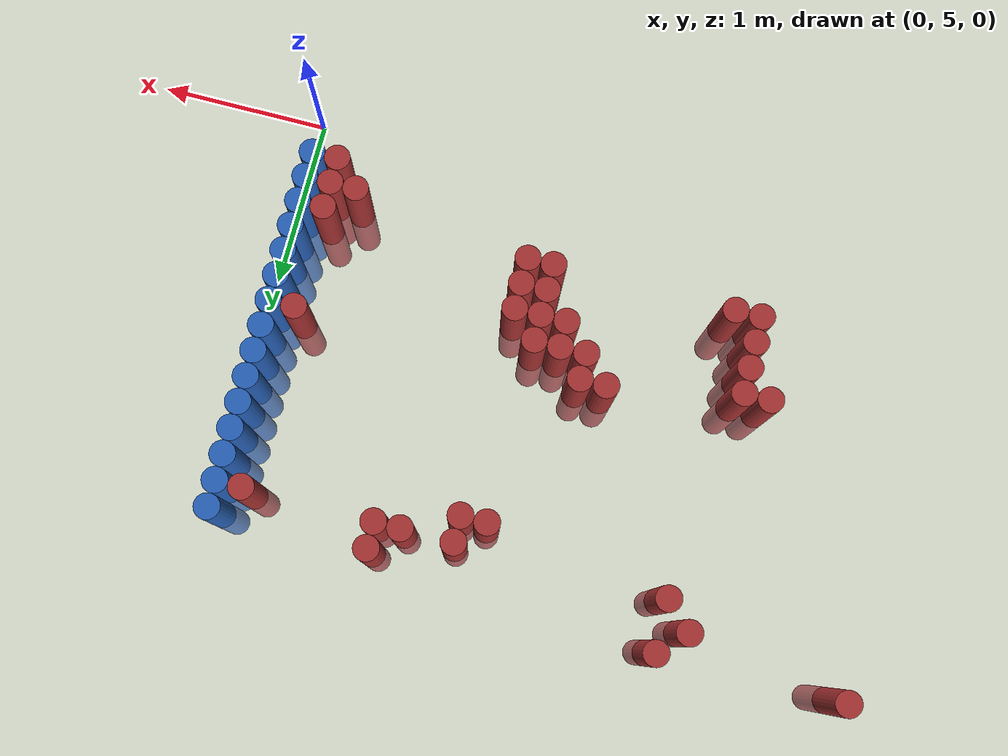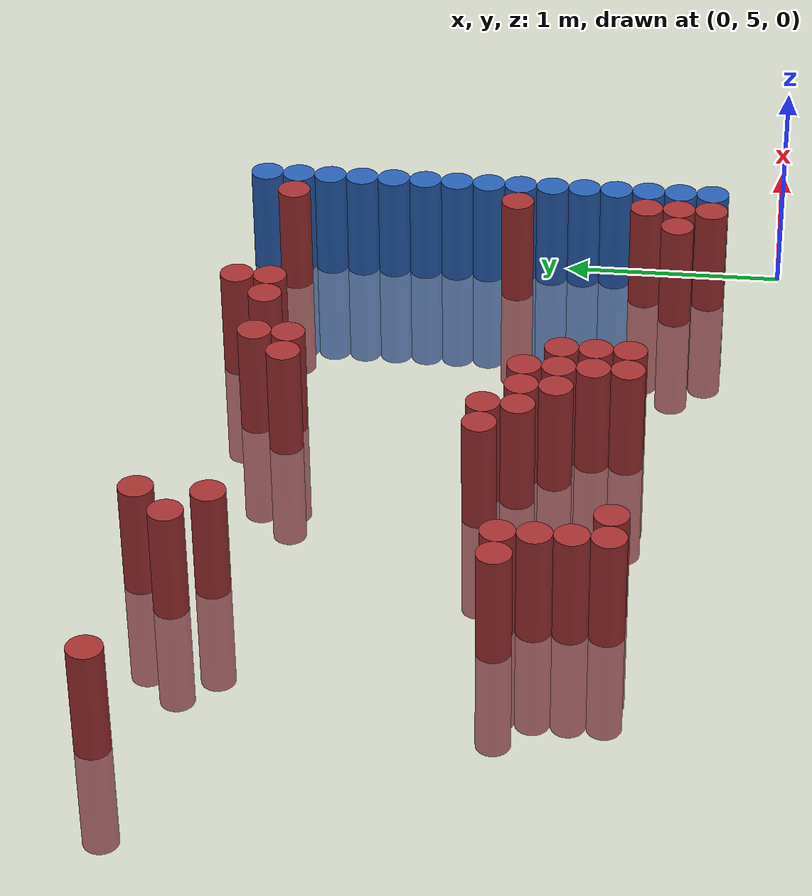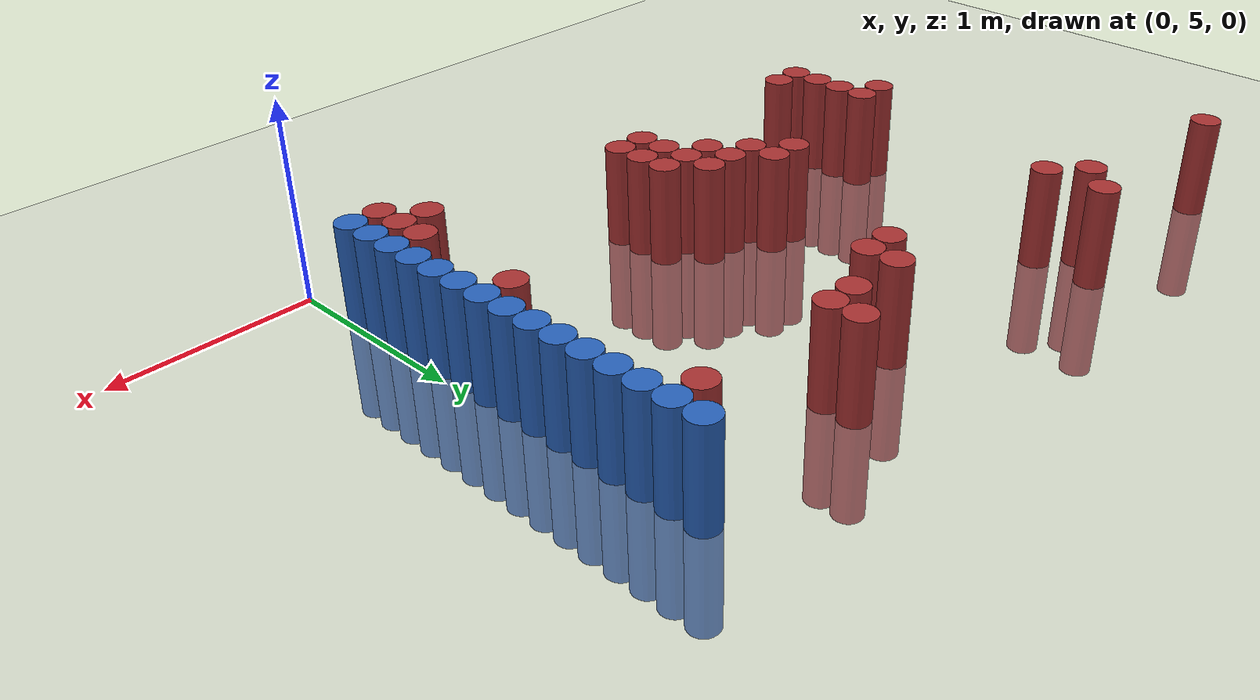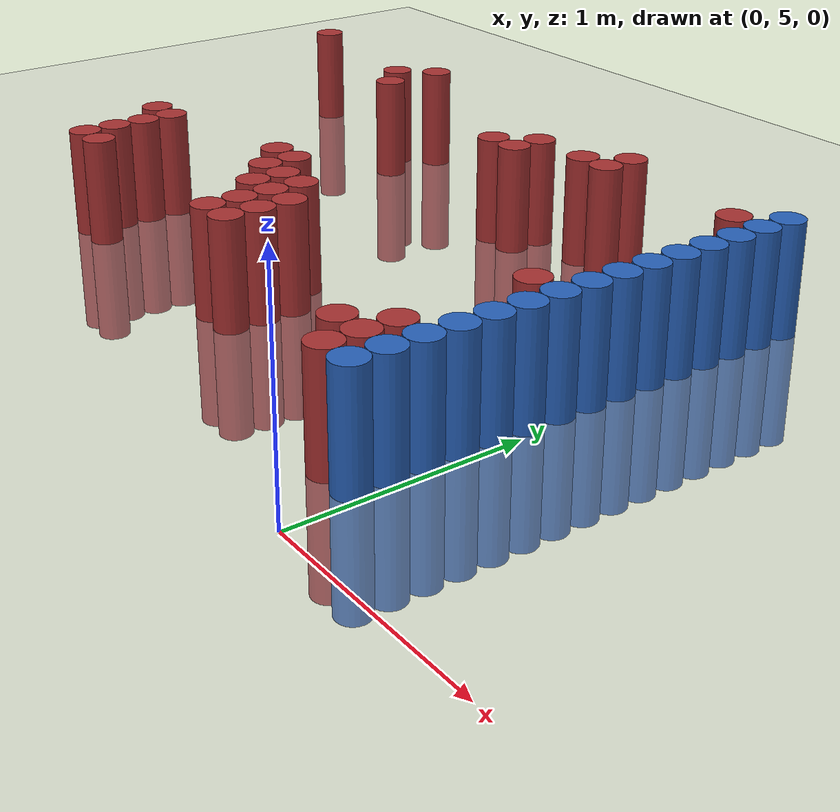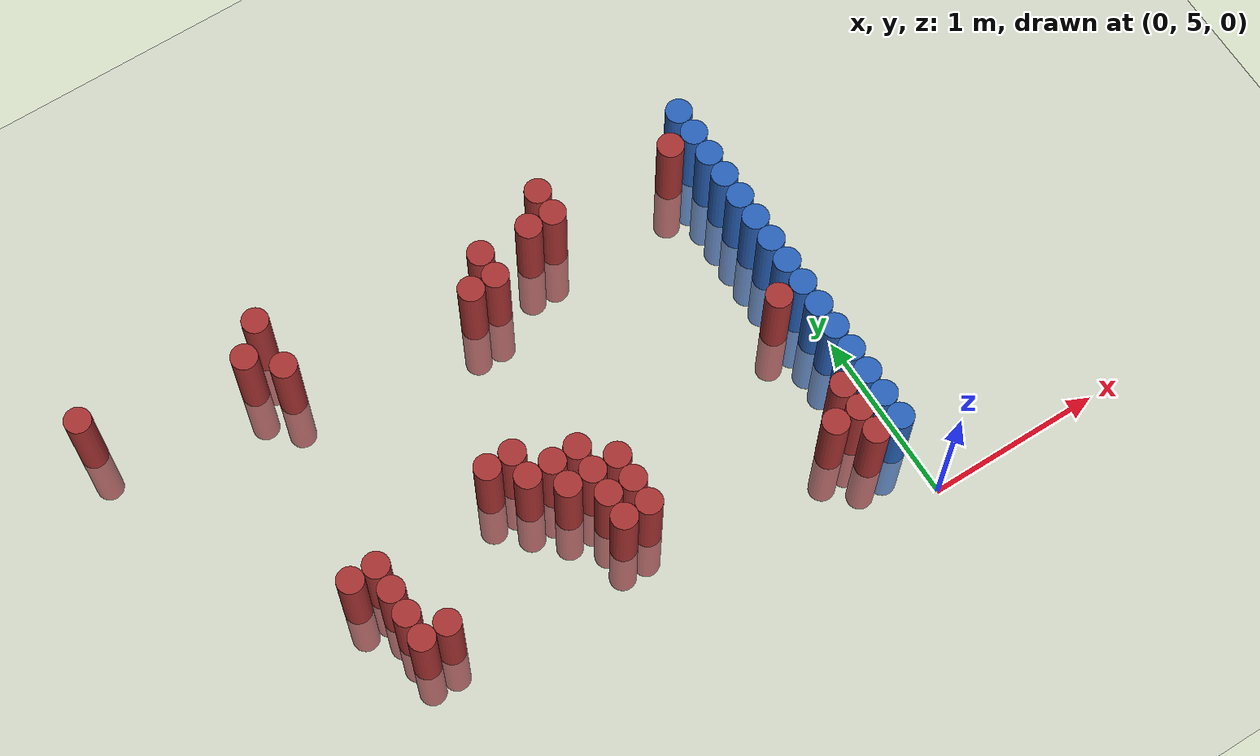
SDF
<sdf version="1.6">
 <world name="default">
  <model name="ground_plane">
   <static>1</static>
   <link name="link">
    <collision name="collision">
     <geometry><plane><normal>0 0 1</normal><size>100 100</size></plane></geometry>
     <surface><friction><ode><mu>100</mu><mu2>50</mu2></ode></friction></surface>
    </collision>
    <visual name="visual">
     <cast_shadows>0</cast_shadows>
     <geometry><plane><normal>0 0 1</normal><size>100 100</size></plane></geometry>
     <material>
      <script><uri>file://media/materials/scripts/gazebo.material</uri><name>Gazebo/Grey</name></script>
     </material>
    </visual>
   </link>
  </model>
  <model name="unit_cylinder_147">
   <static>1</static>
   <pose>-3.675000 7.575000 0.000000 0.000000 0.000000 0.000000</pose>
   <link name="link">
    <inertial>
     <mass>1</mass>
     <inertia><ixx>0.145833</ixx><ixy>0</ixy><ixz>0</ixz><iyy>0.145833</iyy><iyz>0</iyz><izz>0.125</izz></inertia>
    </inertial>
    <collision name="collision">
     <geometry><cylinder><radius>0.075000</radius><length>1</length></cylinder></geometry>
    </collision>
    <visual name="visual">
     <geometry><cylinder><radius>0.075000</radius><length>1</length></cylinder></geometry>
     <material>
      <ambient>0.648000 0.192000 0.192000 1</ambient>
      <diffuse>0.648000 0.192000 0.192000 1</diffuse>
     </material>
     <material>
      <script><name>Gazebo/Grey</name><uri>file://media/materials/scripts/gazebo.material</uri></script>
     </material>
    </visual>
   </link>
  </model>
  <model name="unit_cylinder_158">
   <static>1</static>
   <pose>-2.925000 6.075000 0.000000 0.000000 0.000000 0.000000</pose>
   <link name="link">
    <inertial>
     <mass>1</mass>
     <inertia><ixx>0.145833</ixx><ixy>0</ixy><ixz>0</ixz><iyy>0.145833</iyy><iyz>0</iyz><izz>0.125</izz></inertia>
    </inertial>
    <collision name="collision">
     <geometry><cylinder><radius>0.075000</radius><length>1</length></cylinder></geometry>
    </collision>
    <visual name="visual">
     <geometry><cylinder><radius>0.075000</radius><length>1</length></cylinder></geometry>
     <material>
      <ambient>0.648000 0.192000 0.192000 1</ambient>
      <diffuse>0.648000 0.192000 0.192000 1</diffuse>
     </material>
     <material>
      <script><name>Gazebo/Grey</name><uri>file://media/materials/scripts/gazebo.material</uri></script>
     </material>
    </visual>
   </link>
  </model>
  <model name="unit_cylinder_162">
   <static>1</static>
   <pose>-2.775000 5.625000 0.000000 0.000000 0.000000 0.000000</pose>
   <link name="link">
    <inertial>
     <mass>1</mass>
     <inertia><ixx>0.145833</ixx><ixy>0</ixy><ixz>0</ixz><iyy>0.145833</iyy><iyz>0</iyz><izz>0.125</izz></inertia>
    </inertial>
    <collision name="collision">
     <geometry><cylinder><radius>0.075000</radius><length>1</length></cylinder></geometry>
    </collision>
    <visual name="visual">
     <geometry><cylinder><radius>0.075000</radius><length>1</length></cylinder></geometry>
     <material>
      <ambient>0.648000 0.192000 0.192000 1</ambient>
      <diffuse>0.648000 0.192000 0.192000 1</diffuse>
     </material>
     <material>
      <script><name>Gazebo/Grey</name><uri>file://media/materials/scripts/gazebo.material</uri></script>
     </material>
    </visual>
   </link>
  </model>
  <model name="unit_cylinder_163">
   <static>1</static>
   <pose>-2.775000 5.775000 0.000000 0.000000 0.000000 0.000000</pose>
   <link name="link">
    <inertial>
     <mass>1</mass>
     <inertia><ixx>0.145833</ixx><ixy>0</ixy><ixz>0</ixz><iyy>0.145833</iyy><iyz>0</iyz><izz>0.125</izz></inertia>
    </inertial>
    <collision name="collision">
     <geometry><cylinder><radius>0.075000</radius><length>1</length></cylinder></geometry>
    </collision>
    <visual name="visual">
     <geometry><cylinder><radius>0.075000</radius><length>1</length></cylinder></geometry>
     <material>
      <ambient>0.648000 0.192000 0.192000 1</ambient>
      <diffuse>0.648000 0.192000 0.192000 1</diffuse>
     </material>
     <material>
      <script><name>Gazebo/Grey</name><uri>file://media/materials/scripts/gazebo.material</uri></script>
     </material>
    </visual>
   </link>
  </model>
  <model name="unit_cylinder_164">
   <static>1</static>
   <pose>-2.775000 5.925000 0.000000 0.000000 0.000000 0.000000</pose>
   <link name="link">
    <inertial>
     <mass>1</mass>
     <inertia><ixx>0.145833</ixx><ixy>0</ixy><ixz>0</ixz><iyy>0.145833</iyy><iyz>0</iyz><izz>0.125</izz></inertia>
    </inertial>
    <collision name="collision">
     <geometry><cylinder><radius>0.075000</radius><length>1</length></cylinder></geometry>
    </collision>
    <visual name="visual">
     <geometry><cylinder><radius>0.075000</radius><length>1</length></cylinder></geometry>
     <material>
      <ambient>0.648000 0.192000 0.192000 1</ambient>
      <diffuse>0.648000 0.192000 0.192000 1</diffuse>
     </material>
     <material>
      <script><name>Gazebo/Grey</name><uri>file://media/materials/scripts/gazebo.material</uri></script>
     </material>
    </visual>
   </link>
  </model>
  <model name="unit_cylinder_165">
   <static>1</static>
   <pose>-2.775000 6.075000 0.000000 0.000000 0.000000 0.000000</pose>
   <link name="link">
    <inertial>
     <mass>1</mass>
     <inertia><ixx>0.145833</ixx><ixy>0</ixy><ixz>0</ixz><iyy>0.145833</iyy><iyz>0</iyz><izz>0.125</izz></inertia>
    </inertial>
    <collision name="collision">
     <geometry><cylinder><radius>0.075000</radius><length>1</length></cylinder></geometry>
    </collision>
    <visual name="visual">
     <geometry><cylinder><radius>0.075000</radius><length>1</length></cylinder></geometry>
     <material>
      <ambient>0.648000 0.192000 0.192000 1</ambient>
      <diffuse>0.648000 0.192000 0.192000 1</diffuse>
     </material>
     <material>
      <script><name>Gazebo/Grey</name><uri>file://media/materials/scripts/gazebo.material</uri></script>
     </material>
    </visual>
   </link>
  </model>
  <model name="unit_cylinder_166">
   <static>1</static>
   <pose>-2.775000 7.425000 0.000000 0.000000 0.000000 0.000000</pose>
   <link name="link">
    <inertial>
     <mass>1</mass>
     <inertia><ixx>0.145833</ixx><ixy>0</ixy><ixz>0</ixz><iyy>0.145833</iyy><iyz>0</iyz><izz>0.125</izz></inertia>
    </inertial>
    <collision name="collision">
     <geometry><cylinder><radius>0.075000</radius><length>1</length></cylinder></geometry>
    </collision>
    <visual name="visual">
     <geometry><cylinder><radius>0.075000</radius><length>1</length></cylinder></geometry>
     <material>
      <ambient>0.648000 0.192000 0.192000 1</ambient>
      <diffuse>0.648000 0.192000 0.192000 1</diffuse>
     </material>
     <material>
      <script><name>Gazebo/Grey</name><uri>file://media/materials/scripts/gazebo.material</uri></script>
     </material>
    </visual>
   </link>
  </model>
  <model name="unit_cylinder_168">
   <static>1</static>
   <pose>-2.625000 5.625000 0.000000 0.000000 0.000000 0.000000</pose>
   <link name="link">
    <inertial>
     <mass>1</mass>
     <inertia><ixx>0.145833</ixx><ixy>0</ixy><ixz>0</ixz><iyy>0.145833</iyy><iyz>0</iyz><izz>0.125</izz></inertia>
    </inertial>
    <collision name="collision">
     <geometry><cylinder><radius>0.075000</radius><length>1</length></cylinder></geometry>
    </collision>
    <visual name="visual">
     <geometry><cylinder><radius>0.075000</radius><length>1</length></cylinder></geometry>
     <material>
      <ambient>0.648000 0.192000 0.192000 1</ambient>
      <diffuse>0.648000 0.192000 0.192000 1</diffuse>
     </material>
     <material>
      <script><name>Gazebo/Grey</name><uri>file://media/materials/scripts/gazebo.material</uri></script>
     </material>
    </visual>
   </link>
  </model>
  <model name="unit_cylinder_169">
   <static>1</static>
   <pose>-2.625000 7.275000 0.000000 0.000000 0.000000 0.000000</pose>
   <link name="link">
    <inertial>
     <mass>1</mass>
     <inertia><ixx>0.145833</ixx><ixy>0</ixy><ixz>0</ixz><iyy>0.145833</iyy><iyz>0</iyz><izz>0.125</izz></inertia>
    </inertial>
    <collision name="collision">
     <geometry><cylinder><radius>0.075000</radius><length>1</length></cylinder></geometry>
    </collision>
    <visual name="visual">
     <geometry><cylinder><radius>0.075000</radius><length>1</length></cylinder></geometry>
     <material>
      <ambient>0.648000 0.192000 0.192000 1</ambient>
      <diffuse>0.648000 0.192000 0.192000 1</diffuse>
     </material>
     <material>
      <script><name>Gazebo/Grey</name><uri>file://media/materials/scripts/gazebo.material</uri></script>
     </material>
    </visual>
   </link>
  </model>
  <model name="unit_cylinder_170">
   <static>1</static>
   <pose>-2.625000 7.575000 0.000000 0.000000 0.000000 0.000000</pose>
   <link name="link">
    <inertial>
     <mass>1</mass>
     <inertia><ixx>0.145833</ixx><ixy>0</ixy><ixz>0</ixz><iyy>0.145833</iyy><iyz>0</iyz><izz>0.125</izz></inertia>
    </inertial>
    <collision name="collision">
     <geometry><cylinder><radius>0.075000</radius><length>1</length></cylinder></geometry>
    </collision>
    <visual name="visual">
     <geometry><cylinder><radius>0.075000</radius><length>1</length></cylinder></geometry>
     <material>
      <ambient>0.648000 0.192000 0.192000 1</ambient>
      <diffuse>0.648000 0.192000 0.192000 1</diffuse>
     </material>
     <material>
      <script><name>Gazebo/Grey</name><uri>file://media/materials/scripts/gazebo.material</uri></script>
     </material>
    </visual>
   </link>
  </model>
  <model name="unit_cylinder_171">
   <static>1</static>
   <pose>-2.025000 6.225000 0.000000 0.000000 0.000000 0.000000</pose>
   <link name="link">
    <inertial>
     <mass>1</mass>
     <inertia><ixx>0.145833</ixx><ixy>0</ixy><ixz>0</ixz><iyy>0.145833</iyy><iyz>0</iyz><izz>0.125</izz></inertia>
    </inertial>
    <collision name="collision">
     <geometry><cylinder><radius>0.075000</radius><length>1</length></cylinder></geometry>
    </collision>
    <visual name="visual">
     <geometry><cylinder><radius>0.075000</radius><length>1</length></cylinder></geometry>
     <material>
      <ambient>0.648000 0.192000 0.192000 1</ambient>
      <diffuse>0.648000 0.192000 0.192000 1</diffuse>
     </material>
     <material>
      <script><name>Gazebo/Grey</name><uri>file://media/materials/scripts/gazebo.material</uri></script>
     </material>
    </visual>
   </link>
  </model>
  <model name="unit_cylinder_172">
   <static>1</static>
   <pose>-1.875000 6.075000 0.000000 0.000000 0.000000 0.000000</pose>
   <link name="link">
    <inertial>
     <mass>1</mass>
     <inertia><ixx>0.145833</ixx><ixy>0</ixy><ixz>0</ixz><iyy>0.145833</iyy><iyz>0</iyz><izz>0.125</izz></inertia>
    </inertial>
    <collision name="collision">
     <geometry><cylinder><radius>0.075000</radius><length>1</length></cylinder></geometry>
    </collision>
    <visual name="visual">
     <geometry><cylinder><radius>0.075000</radius><length>1</length></cylinder></geometry>
     <material>
      <ambient>0.648000 0.192000 0.192000 1</ambient>
      <diffuse>0.648000 0.192000 0.192000 1</diffuse>
     </material>
     <material>
      <script><name>Gazebo/Grey</name><uri>file://media/materials/scripts/gazebo.material</uri></script>
     </material>
    </visual>
   </link>
  </model>
  <model name="unit_cylinder_173">
   <static>1</static>
   <pose>-1.875000 6.225000 0.000000 0.000000 0.000000 0.000000</pose>
   <link name="link">
    <inertial>
     <mass>1</mass>
     <inertia><ixx>0.145833</ixx><ixy>0</ixy><ixz>0</ixz><iyy>0.145833</iyy><iyz>0</iyz><izz>0.125</izz></inertia>
    </inertial>
    <collision name="collision">
     <geometry><cylinder><radius>0.075000</radius><length>1</length></cylinder></geometry>
    </collision>
    <visual name="visual">
     <geometry><cylinder><radius>0.075000</radius><length>1</length></cylinder></geometry>
     <material>
      <ambient>0.648000 0.192000 0.192000 1</ambient>
      <diffuse>0.648000 0.192000 0.192000 1</diffuse>
     </material>
     <material>
      <script><name>Gazebo/Grey</name><uri>file://media/materials/scripts/gazebo.material</uri></script>
     </material>
    </visual>
   </link>
  </model>
  <model name="unit_cylinder_174">
   <static>1</static>
   <pose>-1.725000 5.925000 0.000000 0.000000 0.000000 0.000000</pose>
   <link name="link">
    <inertial>
     <mass>1</mass>
     <inertia><ixx>0.145833</ixx><ixy>0</ixy><ixz>0</ixz><iyy>0.145833</iyy><iyz>0</iyz><izz>0.125</izz></inertia>
    </inertial>
    <collision name="collision">
     <geometry><cylinder><radius>0.075000</radius><length>1</length></cylinder></geometry>
    </collision>
    <visual name="visual">
     <geometry><cylinder><radius>0.075000</radius><length>1</length></cylinder></geometry>
     <material>
      <ambient>0.648000 0.192000 0.192000 1</ambient>
      <diffuse>0.648000 0.192000 0.192000 1</diffuse>
     </material>
     <material>
      <script><name>Gazebo/Grey</name><uri>file://media/materials/scripts/gazebo.material</uri></script>
     </material>
    </visual>
   </link>
  </model>
  <model name="unit_cylinder_175">
   <static>1</static>
   <pose>-1.725000 6.075000 0.000000 0.000000 0.000000 0.000000</pose>
   <link name="link">
    <inertial>
     <mass>1</mass>
     <inertia><ixx>0.145833</ixx><ixy>0</ixy><ixz>0</ixz><iyy>0.145833</iyy><iyz>0</iyz><izz>0.125</izz></inertia>
    </inertial>
    <collision name="collision">
     <geometry><cylinder><radius>0.075000</radius><length>1</length></cylinder></geometry>
    </collision>
    <visual name="visual">
     <geometry><cylinder><radius>0.075000</radius><length>1</length></cylinder></geometry>
     <material>
      <ambient>0.648000 0.192000 0.192000 1</ambient>
      <diffuse>0.648000 0.192000 0.192000 1</diffuse>
     </material>
     <material>
      <script><name>Gazebo/Grey</name><uri>file://media/materials/scripts/gazebo.material</uri></script>
     </material>
    </visual>
   </link>
  </model>
  <model name="unit_cylinder_178">
   <static>1</static>
   <pose>-1.575000 5.625000 0.000000 0.000000 0.000000 0.000000</pose>
   <link name="link">
    <inertial>
     <mass>1</mass>
     <inertia><ixx>0.145833</ixx><ixy>0</ixy><ixz>0</ixz><iyy>0.145833</iyy><iyz>0</iyz><izz>0.125</izz></inertia>
    </inertial>
    <collision name="collision">
     <geometry><cylinder><radius>0.075000</radius><length>1</length></cylinder></geometry>
    </collision>
    <visual name="visual">
     <geometry><cylinder><radius>0.075000</radius><length>1</length></cylinder></geometry>
     <material>
      <ambient>0.648000 0.192000 0.192000 1</ambient>
      <diffuse>0.648000 0.192000 0.192000 1</diffuse>
     </material>
     <material>
      <script><name>Gazebo/Grey</name><uri>file://media/materials/scripts/gazebo.material</uri></script>
     </material>
    </visual>
   </link>
  </model>
  <model name="unit_cylinder_179">
   <static>1</static>
   <pose>-1.575000 5.775000 0.000000 0.000000 0.000000 0.000000</pose>
   <link name="link">
    <inertial>
     <mass>1</mass>
     <inertia><ixx>0.145833</ixx><ixy>0</ixy><ixz>0</ixz><iyy>0.145833</iyy><iyz>0</iyz><izz>0.125</izz></inertia>
    </inertial>
    <collision name="collision">
     <geometry><cylinder><radius>0.075000</radius><length>1</length></cylinder></geometry>
    </collision>
    <visual name="visual">
     <geometry><cylinder><radius>0.075000</radius><length>1</length></cylinder></geometry>
     <material>
      <ambient>0.648000 0.192000 0.192000 1</ambient>
      <diffuse>0.648000 0.192000 0.192000 1</diffuse>
     </material>
     <material>
      <script><name>Gazebo/Grey</name><uri>file://media/materials/scripts/gazebo.material</uri></script>
     </material>
    </visual>
   </link>
  </model>
  <model name="unit_cylinder_180">
   <static>1</static>
   <pose>-1.575000 5.925000 0.000000 0.000000 0.000000 0.000000</pose>
   <link name="link">
    <inertial>
     <mass>1</mass>
     <inertia><ixx>0.145833</ixx><ixy>0</ixy><ixz>0</ixz><iyy>0.145833</iyy><iyz>0</iyz><izz>0.125</izz></inertia>
    </inertial>
    <collision name="collision">
     <geometry><cylinder><radius>0.075000</radius><length>1</length></cylinder></geometry>
    </collision>
    <visual name="visual">
     <geometry><cylinder><radius>0.075000</radius><length>1</length></cylinder></geometry>
     <material>
      <ambient>0.648000 0.192000 0.192000 1</ambient>
      <diffuse>0.648000 0.192000 0.192000 1</diffuse>
     </material>
     <material>
      <script><name>Gazebo/Grey</name><uri>file://media/materials/scripts/gazebo.material</uri></script>
     </material>
    </visual>
   </link>
  </model>
  <model name="unit_cylinder_181">
   <static>1</static>
   <pose>-1.575000 6.075000 0.000000 0.000000 0.000000 0.000000</pose>
   <link name="link">
    <inertial>
     <mass>1</mass>
     <inertia><ixx>0.145833</ixx><ixy>0</ixy><ixz>0</ixz><iyy>0.145833</iyy><iyz>0</iyz><izz>0.125</izz></inertia>
    </inertial>
    <collision name="collision">
     <geometry><cylinder><radius>0.075000</radius><length>1</length></cylinder></geometry>
    </collision>
    <visual name="visual">
     <geometry><cylinder><radius>0.075000</radius><length>1</length></cylinder></geometry>
     <material>
      <ambient>0.648000 0.192000 0.192000 1</ambient>
      <diffuse>0.648000 0.192000 0.192000 1</diffuse>
     </material>
     <material>
      <script><name>Gazebo/Grey</name><uri>file://media/materials/scripts/gazebo.material</uri></script>
     </material>
    </visual>
   </link>
  </model>
  <model name="unit_cylinder_182">
   <static>1</static>
   <pose>-1.575000 7.125000 0.000000 0.000000 0.000000 0.000000</pose>
   <link name="link">
    <inertial>
     <mass>1</mass>
     <inertia><ixx>0.145833</ixx><ixy>0</ixy><ixz>0</ixz><iyy>0.145833</iyy><iyz>0</iyz><izz>0.125</izz></inertia>
    </inertial>
    <collision name="collision">
     <geometry><cylinder><radius>0.075000</radius><length>1</length></cylinder></geometry>
    </collision>
    <visual name="visual">
     <geometry><cylinder><radius>0.075000</radius><length>1</length></cylinder></geometry>
     <material>
      <ambient>0.648000 0.192000 0.192000 1</ambient>
      <diffuse>0.648000 0.192000 0.192000 1</diffuse>
     </material>
     <material>
      <script><name>Gazebo/Grey</name><uri>file://media/materials/scripts/gazebo.material</uri></script>
     </material>
    </visual>
   </link>
  </model>
  <model name="unit_cylinder_185">
   <static>1</static>
   <pose>-1.425000 5.625000 0.000000 0.000000 0.000000 0.000000</pose>
   <link name="link">
    <inertial>
     <mass>1</mass>
     <inertia><ixx>0.145833</ixx><ixy>0</ixy><ixz>0</ixz><iyy>0.145833</iyy><iyz>0</iyz><izz>0.125</izz></inertia>
    </inertial>
    <collision name="collision">
     <geometry><cylinder><radius>0.075000</radius><length>1</length></cylinder></geometry>
    </collision>
    <visual name="visual">
     <geometry><cylinder><radius>0.075000</radius><length>1</length></cylinder></geometry>
     <material>
      <ambient>0.648000 0.192000 0.192000 1</ambient>
      <diffuse>0.648000 0.192000 0.192000 1</diffuse>
     </material>
     <material>
      <script><name>Gazebo/Grey</name><uri>file://media/materials/scripts/gazebo.material</uri></script>
     </material>
    </visual>
   </link>
  </model>
  <model name="unit_cylinder_186">
   <static>1</static>
   <pose>-1.425000 5.775000 0.000000 0.000000 0.000000 0.000000</pose>
   <link name="link">
    <inertial>
     <mass>1</mass>
     <inertia><ixx>0.145833</ixx><ixy>0</ixy><ixz>0</ixz><iyy>0.145833</iyy><iyz>0</iyz><izz>0.125</izz></inertia>
    </inertial>
    <collision name="collision">
     <geometry><cylinder><radius>0.075000</radius><length>1</length></cylinder></geometry>
    </collision>
    <visual name="visual">
     <geometry><cylinder><radius>0.075000</radius><length>1</length></cylinder></geometry>
     <material>
      <ambient>0.648000 0.192000 0.192000 1</ambient>
      <diffuse>0.648000 0.192000 0.192000 1</diffuse>
     </material>
     <material>
      <script><name>Gazebo/Grey</name><uri>file://media/materials/scripts/gazebo.material</uri></script>
     </material>
    </visual>
   </link>
  </model>
  <model name="unit_cylinder_187">
   <static>1</static>
   <pose>-1.425000 5.925000 0.000000 0.000000 0.000000 0.000000</pose>
   <link name="link">
    <inertial>
     <mass>1</mass>
     <inertia><ixx>0.145833</ixx><ixy>0</ixy><ixz>0</ixz><iyy>0.145833</iyy><iyz>0</iyz><izz>0.125</izz></inertia>
    </inertial>
    <collision name="collision">
     <geometry><cylinder><radius>0.075000</radius><length>1</length></cylinder></geometry>
    </collision>
    <visual name="visual">
     <geometry><cylinder><radius>0.075000</radius><length>1</length></cylinder></geometry>
     <material>
      <ambient>0.648000 0.192000 0.192000 1</ambient>
      <diffuse>0.648000 0.192000 0.192000 1</diffuse>
     </material>
     <material>
      <script><name>Gazebo/Grey</name><uri>file://media/materials/scripts/gazebo.material</uri></script>
     </material>
    </visual>
   </link>
  </model>
  <model name="unit_cylinder_188">
   <static>1</static>
   <pose>-1.425000 7.125000 0.000000 0.000000 0.000000 0.000000</pose>
   <link name="link">
    <inertial>
     <mass>1</mass>
     <inertia><ixx>0.145833</ixx><ixy>0</ixy><ixz>0</ixz><iyy>0.145833</iyy><iyz>0</iyz><izz>0.125</izz></inertia>
    </inertial>
    <collision name="collision">
     <geometry><cylinder><radius>0.075000</radius><length>1</length></cylinder></geometry>
    </collision>
    <visual name="visual">
     <geometry><cylinder><radius>0.075000</radius><length>1</length></cylinder></geometry>
     <material>
      <ambient>0.648000 0.192000 0.192000 1</ambient>
      <diffuse>0.648000 0.192000 0.192000 1</diffuse>
     </material>
     <material>
      <script><name>Gazebo/Grey</name><uri>file://media/materials/scripts/gazebo.material</uri></script>
     </material>
    </visual>
   </link>
  </model>
  <model name="unit_cylinder_189">
   <static>1</static>
   <pose>-1.425000 7.275000 0.000000 0.000000 0.000000 0.000000</pose>
   <link name="link">
    <inertial>
     <mass>1</mass>
     <inertia><ixx>0.145833</ixx><ixy>0</ixy><ixz>0</ixz><iyy>0.145833</iyy><iyz>0</iyz><izz>0.125</izz></inertia>
    </inertial>
    <collision name="collision">
     <geometry><cylinder><radius>0.075000</radius><length>1</length></cylinder></geometry>
    </collision>
    <visual name="visual">
     <geometry><cylinder><radius>0.075000</radius><length>1</length></cylinder></geometry>
     <material>
      <ambient>0.648000 0.192000 0.192000 1</ambient>
      <diffuse>0.648000 0.192000 0.192000 1</diffuse>
     </material>
     <material>
      <script><name>Gazebo/Grey</name><uri>file://media/materials/scripts/gazebo.material</uri></script>
     </material>
    </visual>
   </link>
  </model>
  <model name="unit_cylinder_191">
   <static>1</static>
   <pose>-1.125000 7.275000 0.000000 0.000000 0.000000 0.000000</pose>
   <link name="link">
    <inertial>
     <mass>1</mass>
     <inertia><ixx>0.145833</ixx><ixy>0</ixy><ixz>0</ixz><iyy>0.145833</iyy><iyz>0</iyz><izz>0.125</izz></inertia>
    </inertial>
    <collision name="collision">
     <geometry><cylinder><radius>0.075000</radius><length>1</length></cylinder></geometry>
    </collision>
    <visual name="visual">
     <geometry><cylinder><radius>0.075000</radius><length>1</length></cylinder></geometry>
     <material>
      <ambient>0.648000 0.192000 0.192000 1</ambient>
      <diffuse>0.648000 0.192000 0.192000 1</diffuse>
     </material>
     <material>
      <script><name>Gazebo/Grey</name><uri>file://media/materials/scripts/gazebo.material</uri></script>
     </material>
    </visual>
   </link>
  </model>
  <model name="unit_cylinder_195">
   <static>1</static>
   <pose>-0.975000 7.275000 0.000000 0.000000 0.000000 0.000000</pose>
   <link name="link">
    <inertial>
     <mass>1</mass>
     <inertia><ixx>0.145833</ixx><ixy>0</ixy><ixz>0</ixz><iyy>0.145833</iyy><iyz>0</iyz><izz>0.125</izz></inertia>
    </inertial>
    <collision name="collision">
     <geometry><cylinder><radius>0.075000</radius><length>1</length></cylinder></geometry>
    </collision>
    <visual name="visual">
     <geometry><cylinder><radius>0.075000</radius><length>1</length></cylinder></geometry>
     <material>
      <ambient>0.648000 0.192000 0.192000 1</ambient>
      <diffuse>0.648000 0.192000 0.192000 1</diffuse>
     </material>
     <material>
      <script><name>Gazebo/Grey</name><uri>file://media/materials/scripts/gazebo.material</uri></script>
     </material>
    </visual>
   </link>
  </model>
  <model name="unit_cylinder_196">
   <static>1</static>
   <pose>-0.975000 7.425000 0.000000 0.000000 0.000000 0.000000</pose>
   <link name="link">
    <inertial>
     <mass>1</mass>
     <inertia><ixx>0.145833</ixx><ixy>0</ixy><ixz>0</ixz><iyy>0.145833</iyy><iyz>0</iyz><izz>0.125</izz></inertia>
    </inertial>
    <collision name="collision">
     <geometry><cylinder><radius>0.075000</radius><length>1</length></cylinder></geometry>
    </collision>
    <visual name="visual">
     <geometry><cylinder><radius>0.075000</radius><length>1</length></cylinder></geometry>
     <material>
      <ambient>0.648000 0.192000 0.192000 1</ambient>
      <diffuse>0.648000 0.192000 0.192000 1</diffuse>
     </material>
     <material>
      <script><name>Gazebo/Grey</name><uri>file://media/materials/scripts/gazebo.material</uri></script>
     </material>
    </visual>
   </link>
  </model>
  <model name="unit_cylinder_208">
   <static>1</static>
   <pose>-0.375000 5.475000 0.000000 0.000000 0.000000 0.000000</pose>
   <link name="link">
    <inertial>
     <mass>1</mass>
     <inertia><ixx>0.145833</ixx><ixy>0</ixy><ixz>0</ixz><iyy>0.145833</iyy><iyz>0</iyz><izz>0.125</izz></inertia>
    </inertial>
    <collision name="collision">
     <geometry><cylinder><radius>0.075000</radius><length>1</length></cylinder></geometry>
    </collision>
    <visual name="visual">
     <geometry><cylinder><radius>0.075000</radius><length>1</length></cylinder></geometry>
     <material>
      <ambient>0.648000 0.192000 0.192000 1</ambient>
      <diffuse>0.648000 0.192000 0.192000 1</diffuse>
     </material>
     <material>
      <script><name>Gazebo/Grey</name><uri>file://media/materials/scripts/gazebo.material</uri></script>
     </material>
    </visual>
   </link>
  </model>
  <model name="unit_cylinder_209">
   <static>1</static>
   <pose>-0.225000 5.325000 0.000000 0.000000 0.000000 0.000000</pose>
   <link name="link">
    <inertial>
     <mass>1</mass>
     <inertia><ixx>0.145833</ixx><ixy>0</ixy><ixz>0</ixz><iyy>0.145833</iyy><iyz>0</iyz><izz>0.125</izz></inertia>
    </inertial>
    <collision name="collision">
     <geometry><cylinder><radius>0.075000</radius><length>1</length></cylinder></geometry>
    </collision>
    <visual name="visual">
     <geometry><cylinder><radius>0.075000</radius><length>1</length></cylinder></geometry>
     <material>
      <ambient>0.648000 0.192000 0.192000 1</ambient>
      <diffuse>0.648000 0.192000 0.192000 1</diffuse>
     </material>
     <material>
      <script><name>Gazebo/Grey</name><uri>file://media/materials/scripts/gazebo.material</uri></script>
     </material>
    </visual>
   </link>
  </model>
  <model name="unit_cylinder_210">
   <static>1</static>
   <pose>-0.225000 5.475000 0.000000 0.000000 0.000000 0.000000</pose>
   <link name="link">
    <inertial>
     <mass>1</mass>
     <inertia><ixx>0.145833</ixx><ixy>0</ixy><ixz>0</ixz><iyy>0.145833</iyy><iyz>0</iyz><izz>0.125</izz></inertia>
    </inertial>
    <collision name="collision">
     <geometry><cylinder><radius>0.075000</radius><length>1</length></cylinder></geometry>
    </collision>
    <visual name="visual">
     <geometry><cylinder><radius>0.075000</radius><length>1</length></cylinder></geometry>
     <material>
      <ambient>0.648000 0.192000 0.192000 1</ambient>
      <diffuse>0.648000 0.192000 0.192000 1</diffuse>
     </material>
     <material>
      <script><name>Gazebo/Grey</name><uri>file://media/materials/scripts/gazebo.material</uri></script>
     </material>
    </visual>
   </link>
  </model>
  <model name="unit_cylinder_211">
   <static>1</static>
   <pose>-0.225000 5.625000 0.000000 0.000000 0.000000 0.000000</pose>
   <link name="link">
    <inertial>
     <mass>1</mass>
     <inertia><ixx>0.145833</ixx><ixy>0</ixy><ixz>0</ixz><iyy>0.145833</iyy><iyz>0</iyz><izz>0.125</izz></inertia>
    </inertial>
    <collision name="collision">
     <geometry><cylinder><radius>0.075000</radius><length>1</length></cylinder></geometry>
    </collision>
    <visual name="visual">
     <geometry><cylinder><radius>0.075000</radius><length>1</length></cylinder></geometry>
     <material>
      <ambient>0.648000 0.192000 0.192000 1</ambient>
      <diffuse>0.648000 0.192000 0.192000 1</diffuse>
     </material>
     <material>
      <script><name>Gazebo/Grey</name><uri>file://media/materials/scripts/gazebo.material</uri></script>
     </material>
    </visual>
   </link>
  </model>
  <model name="unit_cylinder_212">
   <static>1</static>
   <pose>-0.225000 6.225000 0.000000 0.000000 0.000000 0.000000</pose>
   <link name="link">
    <inertial>
     <mass>1</mass>
     <inertia><ixx>0.145833</ixx><ixy>0</ixy><ixz>0</ixz><iyy>0.145833</iyy><iyz>0</iyz><izz>0.125</izz></inertia>
    </inertial>
    <collision name="collision">
     <geometry><cylinder><radius>0.075000</radius><length>1</length></cylinder></geometry>
    </collision>
    <visual name="visual">
     <geometry><cylinder><radius>0.075000</radius><length>1</length></cylinder></geometry>
     <material>
      <ambient>0.648000 0.192000 0.192000 1</ambient>
      <diffuse>0.648000 0.192000 0.192000 1</diffuse>
     </material>
     <material>
      <script><name>Gazebo/Grey</name><uri>file://media/materials/scripts/gazebo.material</uri></script>
     </material>
    </visual>
   </link>
  </model>
  <model name="unit_cylinder_213">
   <static>1</static>
   <pose>-0.225000 7.275000 0.000000 0.000000 0.000000 0.000000</pose>
   <link name="link">
    <inertial>
     <mass>1</mass>
     <inertia><ixx>0.145833</ixx><ixy>0</ixy><ixz>0</ixz><iyy>0.145833</iyy><iyz>0</iyz><izz>0.125</izz></inertia>
    </inertial>
    <collision name="collision">
     <geometry><cylinder><radius>0.075000</radius><length>1</length></cylinder></geometry>
    </collision>
    <visual name="visual">
     <geometry><cylinder><radius>0.075000</radius><length>1</length></cylinder></geometry>
     <material>
      <ambient>0.648000 0.192000 0.192000 1</ambient>
      <diffuse>0.648000 0.192000 0.192000 1</diffuse>
     </material>
     <material>
      <script><name>Gazebo/Grey</name><uri>file://media/materials/scripts/gazebo.material</uri></script>
     </material>
    </visual>
   </link>
  </model>
  <model name="unit_cylinder_218">
   <static>1</static>
   <pose>-0.075000 5.325000 0.000000 0.000000 0.000000 0.000000</pose>
   <link name="link">
    <inertial>
     <mass>1</mass>
     <inertia><ixx>0.145833</ixx><ixy>0</ixy><ixz>0</ixz><iyy>0.145833</iyy><iyz>0</iyz><izz>0.125</izz></inertia>
    </inertial>
    <collision name="collision">
     <geometry><cylinder><radius>0.075000</radius><length>1</length></cylinder></geometry>
    </collision>
    <visual name="visual">
     <geometry><cylinder><radius>0.075000</radius><length>1</length></cylinder></geometry>
     <material>
      <ambient>0.152000 0.379000 0.720000 1</ambient>
      <diffuse>0.152000 0.379000 0.720000 1</diffuse>
     </material>
     <material>
      <script><name>Gazebo/Grey</name><uri>file://media/materials/scripts/gazebo.material</uri></script>
     </material>
    </visual>
   </link>
  </model>
  <model name="unit_cylinder_219">
   <static>1</static>
   <pose>-0.075000 5.475000 0.000000 0.000000 0.000000 0.000000</pose>
   <link name="link">
    <inertial>
     <mass>1</mass>
     <inertia><ixx>0.145833</ixx><ixy>0</ixy><ixz>0</ixz><iyy>0.145833</iyy><iyz>0</iyz><izz>0.125</izz></inertia>
    </inertial>
    <collision name="collision">
     <geometry><cylinder><radius>0.075000</radius><length>1</length></cylinder></geometry>
    </collision>
    <visual name="visual">
     <geometry><cylinder><radius>0.075000</radius><length>1</length></cylinder></geometry>
     <material>
      <ambient>0.152000 0.379000 0.720000 1</ambient>
      <diffuse>0.152000 0.379000 0.720000 1</diffuse>
     </material>
     <material>
      <script><name>Gazebo/Grey</name><uri>file://media/materials/scripts/gazebo.material</uri></script>
     </material>
    </visual>
   </link>
  </model>
  <model name="unit_cylinder_220">
   <static>1</static>
   <pose>-0.075000 5.625000 0.000000 0.000000 0.000000 0.000000</pose>
   <link name="link">
    <inertial>
     <mass>1</mass>
     <inertia><ixx>0.145833</ixx><ixy>0</ixy><ixz>0</ixz><iyy>0.145833</iyy><iyz>0</iyz><izz>0.125</izz></inertia>
    </inertial>
    <collision name="collision">
     <geometry><cylinder><radius>0.075000</radius><length>1</length></cylinder></geometry>
    </collision>
    <visual name="visual">
     <geometry><cylinder><radius>0.075000</radius><length>1</length></cylinder></geometry>
     <material>
      <ambient>0.152000 0.379000 0.720000 1</ambient>
      <diffuse>0.152000 0.379000 0.720000 1</diffuse>
     </material>
     <material>
      <script><name>Gazebo/Grey</name><uri>file://media/materials/scripts/gazebo.material</uri></script>
     </material>
    </visual>
   </link>
  </model>
  <model name="unit_cylinder_221">
   <static>1</static>
   <pose>-0.075000 5.775000 0.000000 0.000000 0.000000 0.000000</pose>
   <link name="link">
    <inertial>
     <mass>1</mass>
     <inertia><ixx>0.145833</ixx><ixy>0</ixy><ixz>0</ixz><iyy>0.145833</iyy><iyz>0</iyz><izz>0.125</izz></inertia>
    </inertial>
    <collision name="collision">
     <geometry><cylinder><radius>0.075000</radius><length>1</length></cylinder></geometry>
    </collision>
    <visual name="visual">
     <geometry><cylinder><radius>0.075000</radius><length>1</length></cylinder></geometry>
     <material>
      <ambient>0.152000 0.379000 0.720000 1</ambient>
      <diffuse>0.152000 0.379000 0.720000 1</diffuse>
     </material>
     <material>
      <script><name>Gazebo/Grey</name><uri>file://media/materials/scripts/gazebo.material</uri></script>
     </material>
    </visual>
   </link>
  </model>
  <model name="unit_cylinder_222">
   <static>1</static>
   <pose>-0.075000 5.925000 0.000000 0.000000 0.000000 0.000000</pose>
   <link name="link">
    <inertial>
     <mass>1</mass>
     <inertia><ixx>0.145833</ixx><ixy>0</ixy><ixz>0</ixz><iyy>0.145833</iyy><iyz>0</iyz><izz>0.125</izz></inertia>
    </inertial>
    <collision name="collision">
     <geometry><cylinder><radius>0.075000</radius><length>1</length></cylinder></geometry>
    </collision>
    <visual name="visual">
     <geometry><cylinder><radius>0.075000</radius><length>1</length></cylinder></geometry>
     <material>
      <ambient>0.152000 0.379000 0.720000 1</ambient>
      <diffuse>0.152000 0.379000 0.720000 1</diffuse>
     </material>
     <material>
      <script><name>Gazebo/Grey</name><uri>file://media/materials/scripts/gazebo.material</uri></script>
     </material>
    </visual>
   </link>
  </model>
  <model name="unit_cylinder_223">
   <static>1</static>
   <pose>-0.075000 6.075000 0.000000 0.000000 0.000000 0.000000</pose>
   <link name="link">
    <inertial>
     <mass>1</mass>
     <inertia><ixx>0.145833</ixx><ixy>0</ixy><ixz>0</ixz><iyy>0.145833</iyy><iyz>0</iyz><izz>0.125</izz></inertia>
    </inertial>
    <collision name="collision">
     <geometry><cylinder><radius>0.075000</radius><length>1</length></cylinder></geometry>
    </collision>
    <visual name="visual">
     <geometry><cylinder><radius>0.075000</radius><length>1</length></cylinder></geometry>
     <material>
      <ambient>0.152000 0.379000 0.720000 1</ambient>
      <diffuse>0.152000 0.379000 0.720000 1</diffuse>
     </material>
     <material>
      <script><name>Gazebo/Grey</name><uri>file://media/materials/scripts/gazebo.material</uri></script>
     </material>
    </visual>
   </link>
  </model>
  <model name="unit_cylinder_224">
   <static>1</static>
   <pose>-0.075000 6.225000 0.000000 0.000000 0.000000 0.000000</pose>
   <link name="link">
    <inertial>
     <mass>1</mass>
     <inertia><ixx>0.145833</ixx><ixy>0</ixy><ixz>0</ixz><iyy>0.145833</iyy><iyz>0</iyz><izz>0.125</izz></inertia>
    </inertial>
    <collision name="collision">
     <geometry><cylinder><radius>0.075000</radius><length>1</length></cylinder></geometry>
    </collision>
    <visual name="visual">
     <geometry><cylinder><radius>0.075000</radius><length>1</length></cylinder></geometry>
     <material>
      <ambient>0.152000 0.379000 0.720000 1</ambient>
      <diffuse>0.152000 0.379000 0.720000 1</diffuse>
     </material>
     <material>
      <script><name>Gazebo/Grey</name><uri>file://media/materials/scripts/gazebo.material</uri></script>
     </material>
    </visual>
   </link>
  </model>
  <model name="unit_cylinder_225">
   <static>1</static>
   <pose>-0.075000 6.375000 0.000000 0.000000 0.000000 0.000000</pose>
   <link name="link">
    <inertial>
     <mass>1</mass>
     <inertia><ixx>0.145833</ixx><ixy>0</ixy><ixz>0</ixz><iyy>0.145833</iyy><iyz>0</iyz><izz>0.125</izz></inertia>
    </inertial>
    <collision name="collision">
     <geometry><cylinder><radius>0.075000</radius><length>1</length></cylinder></geometry>
    </collision>
    <visual name="visual">
     <geometry><cylinder><radius>0.075000</radius><length>1</length></cylinder></geometry>
     <material>
      <ambient>0.152000 0.379000 0.720000 1</ambient>
      <diffuse>0.152000 0.379000 0.720000 1</diffuse>
     </material>
     <material>
      <script><name>Gazebo/Grey</name><uri>file://media/materials/scripts/gazebo.material</uri></script>
     </material>
    </visual>
   </link>
  </model>
  <model name="unit_cylinder_226">
   <static>1</static>
   <pose>-0.075000 6.525000 0.000000 0.000000 0.000000 0.000000</pose>
   <link name="link">
    <inertial>
     <mass>1</mass>
     <inertia><ixx>0.145833</ixx><ixy>0</ixy><ixz>0</ixz><iyy>0.145833</iyy><iyz>0</iyz><izz>0.125</izz></inertia>
    </inertial>
    <collision name="collision">
     <geometry><cylinder><radius>0.075000</radius><length>1</length></cylinder></geometry>
    </collision>
    <visual name="visual">
     <geometry><cylinder><radius>0.075000</radius><length>1</length></cylinder></geometry>
     <material>
      <ambient>0.152000 0.379000 0.720000 1</ambient>
      <diffuse>0.152000 0.379000 0.720000 1</diffuse>
     </material>
     <material>
      <script><name>Gazebo/Grey</name><uri>file://media/materials/scripts/gazebo.material</uri></script>
     </material>
    </visual>
   </link>
  </model>
  <model name="unit_cylinder_227">
   <static>1</static>
   <pose>-0.075000 6.675000 0.000000 0.000000 0.000000 0.000000</pose>
   <link name="link">
    <inertial>
     <mass>1</mass>
     <inertia><ixx>0.145833</ixx><ixy>0</ixy><ixz>0</ixz><iyy>0.145833</iyy><iyz>0</iyz><izz>0.125</izz></inertia>
    </inertial>
    <collision name="collision">
     <geometry><cylinder><radius>0.075000</radius><length>1</length></cylinder></geometry>
    </collision>
    <visual name="visual">
     <geometry><cylinder><radius>0.075000</radius><length>1</length></cylinder></geometry>
     <material>
      <ambient>0.152000 0.379000 0.720000 1</ambient>
      <diffuse>0.152000 0.379000 0.720000 1</diffuse>
     </material>
     <material>
      <script><name>Gazebo/Grey</name><uri>file://media/materials/scripts/gazebo.material</uri></script>
     </material>
    </visual>
   </link>
  </model>
  <model name="unit_cylinder_228">
   <static>1</static>
   <pose>-0.075000 6.825000 0.000000 0.000000 0.000000 0.000000</pose>
   <link name="link">
    <inertial>
     <mass>1</mass>
     <inertia><ixx>0.145833</ixx><ixy>0</ixy><ixz>0</ixz><iyy>0.145833</iyy><iyz>0</iyz><izz>0.125</izz></inertia>
    </inertial>
    <collision name="collision">
     <geometry><cylinder><radius>0.075000</radius><length>1</length></cylinder></geometry>
    </collision>
    <visual name="visual">
     <geometry><cylinder><radius>0.075000</radius><length>1</length></cylinder></geometry>
     <material>
      <ambient>0.152000 0.379000 0.720000 1</ambient>
      <diffuse>0.152000 0.379000 0.720000 1</diffuse>
     </material>
     <material>
      <script><name>Gazebo/Grey</name><uri>file://media/materials/scripts/gazebo.material</uri></script>
     </material>
    </visual>
   </link>
  </model>
  <model name="unit_cylinder_229">
   <static>1</static>
   <pose>-0.075000 6.975000 0.000000 0.000000 0.000000 0.000000</pose>
   <link name="link">
    <inertial>
     <mass>1</mass>
     <inertia><ixx>0.145833</ixx><ixy>0</ixy><ixz>0</ixz><iyy>0.145833</iyy><iyz>0</iyz><izz>0.125</izz></inertia>
    </inertial>
    <collision name="collision">
     <geometry><cylinder><radius>0.075000</radius><length>1</length></cylinder></geometry>
    </collision>
    <visual name="visual">
     <geometry><cylinder><radius>0.075000</radius><length>1</length></cylinder></geometry>
     <material>
      <ambient>0.152000 0.379000 0.720000 1</ambient>
      <diffuse>0.152000 0.379000 0.720000 1</diffuse>
     </material>
     <material>
      <script><name>Gazebo/Grey</name><uri>file://media/materials/scripts/gazebo.material</uri></script>
     </material>
    </visual>
   </link>
  </model>
  <model name="unit_cylinder_230">
   <static>1</static>
   <pose>-0.075000 7.125000 0.000000 0.000000 0.000000 0.000000</pose>
   <link name="link">
    <inertial>
     <mass>1</mass>
     <inertia><ixx>0.145833</ixx><ixy>0</ixy><ixz>0</ixz><iyy>0.145833</iyy><iyz>0</iyz><izz>0.125</izz></inertia>
    </inertial>
    <collision name="collision">
     <geometry><cylinder><radius>0.075000</radius><length>1</length></cylinder></geometry>
    </collision>
    <visual name="visual">
     <geometry><cylinder><radius>0.075000</radius><length>1</length></cylinder></geometry>
     <material>
      <ambient>0.152000 0.379000 0.720000 1</ambient>
      <diffuse>0.152000 0.379000 0.720000 1</diffuse>
     </material>
     <material>
      <script><name>Gazebo/Grey</name><uri>file://media/materials/scripts/gazebo.material</uri></script>
     </material>
    </visual>
   </link>
  </model>
  <model name="unit_cylinder_231">
   <static>1</static>
   <pose>-0.075000 7.275000 0.000000 0.000000 0.000000 0.000000</pose>
   <link name="link">
    <inertial>
     <mass>1</mass>
     <inertia><ixx>0.145833</ixx><ixy>0</ixy><ixz>0</ixz><iyy>0.145833</iyy><iyz>0</iyz><izz>0.125</izz></inertia>
    </inertial>
    <collision name="collision">
     <geometry><cylinder><radius>0.075000</radius><length>1</length></cylinder></geometry>
    </collision>
    <visual name="visual">
     <geometry><cylinder><radius>0.075000</radius><length>1</length></cylinder></geometry>
     <material>
      <ambient>0.152000 0.379000 0.720000 1</ambient>
      <diffuse>0.152000 0.379000 0.720000 1</diffuse>
     </material>
     <material>
      <script><name>Gazebo/Grey</name><uri>file://media/materials/scripts/gazebo.material</uri></script>
     </material>
    </visual>
   </link>
  </model>
  <model name="unit_cylinder_232">
   <static>1</static>
   <pose>-0.075000 7.425000 0.000000 0.000000 0.000000 0.000000</pose>
   <link name="link">
    <inertial>
     <mass>1</mass>
     <inertia><ixx>0.145833</ixx><ixy>0</ixy><ixz>0</ixz><iyy>0.145833</iyy><iyz>0</iyz><izz>0.125</izz></inertia>
    </inertial>
    <collision name="collision">
     <geometry><cylinder><radius>0.075000</radius><length>1</length></cylinder></geometry>
    </collision>
    <visual name="visual">
     <geometry><cylinder><radius>0.075000</radius><length>1</length></cylinder></geometry>
     <material>
      <ambient>0.152000 0.379000 0.720000 1</ambient>
      <diffuse>0.152000 0.379000 0.720000 1</diffuse>
     </material>
     <material>
      <script><name>Gazebo/Grey</name><uri>file://media/materials/scripts/gazebo.material</uri></script>
     </material>
    </visual>
   </link>
  </model>
 </world>
</sdf>
